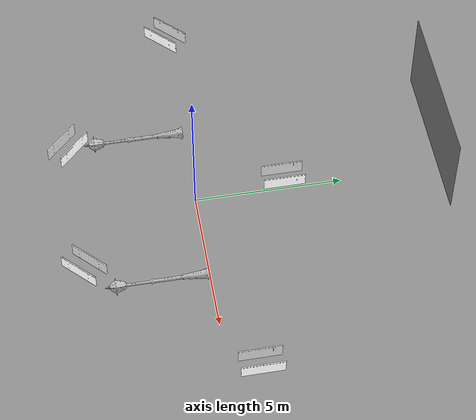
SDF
<sdf version="1.10">
 <world name="default">
  <physics type="ode">
   <max_step_size>0.0040000000000000001</max_step_size>
   <real_time_factor>1</real_time_factor>
   <real_time_update_rate>250</real_time_update_rate>
  </physics>
  <plugin name="gz::sim::systems::Physics" filename="gz-sim-physics-system"/>
  <plugin name="gz::sim::systems::UserCommands" filename="gz-sim-user-commands-system"/>
  <plugin name="gz::sim::systems::SceneBroadcaster" filename="gz-sim-scene-broadcaster-system"/>
  <plugin name="gz::sim::systems::Contact" filename="gz-sim-contact-system"/>
  <plugin name="gz::sim::systems::Imu" filename="gz-sim-imu-system"/>
  <plugin name="gz::sim::systems::Magnetometer" filename="gz-sim-magnetometer-system"/>
  <plugin name="gz::sim::systems::Altimeter" filename="gz-sim-altimeter-system"/>
  <plugin name="gz::sim::systems::NavSat" filename="gz-sim-navsat-system"/>
  <plugin name="gz::sim::systems::Sensors" filename="gz-sim-sensors-system">
   <render_engine>ogre2</render_engine>
  </plugin>
  <gravity>0 0 -9.8000000000000007</gravity>
  <magnetic_field>6.0000000000000002e-06 2.3e-05 -4.1999999999999998e-05</magnetic_field>
  <atmosphere type="adiabatic"/>
  <spherical_coordinates>
   <surface_model>EARTH_WGS84</surface_model>
   <latitude_deg>39.79480109851339</latitude_deg>
   <longitude_deg>-84.08631702793322</longitude_deg>
   <elevation>265.2</elevation>
   <heading_deg>0</heading_deg>
  </spherical_coordinates>
  <scene><grid>false</grid></scene>
  <model name="fire_1">
   <static>true</static>
   <link name="main">
    <collision name="collision">
     <pose>3 0 0 1.57079632679 0 0</pose>
     <geometry><mesh><scale>1 1 1</scale><uri>street.glb</uri></mesh></geometry>
    </collision>
    <visual name="objects">
     <pose>3 0 0 1.57079632679 0 0</pose>
     <geometry><mesh><scale>1 1 1</scale><uri>street.glb</uri></mesh></geometry>
    </visual>
   </link>
  </model>
  <model name="fire_2">
   <static>true</static>
   <link name="main">
    <collision name="collision">
     <pose>-3 0 0 1.57079632679 0 0</pose>
     <geometry><mesh><scale>1 1 1</scale><uri>street.glb</uri></mesh></geometry>
    </collision>
    <visual name="objects">
     <pose>-3 0 0 1.57079632679 0 0</pose>
     <geometry><mesh><scale>1 1 1</scale><uri>street.glb</uri></mesh></geometry>
    </visual>
   </link>
  </model>
  <model name="curtain_1">
   <static>true</static>
   <link name="main">
    <visual name="objects">
     <pose>-2.5 -4 0 0 0 0.78539816339</pose>
     <geometry><mesh><uri>curtain.dae</uri></mesh></geometry>
    </visual>
   </link>
  </model>
  <model name="curtain_2">
   <static>true</static>
   <link name="main">
    <visual name="objects">
     <pose>2.5 -4 0 0 0 -0.78539816339</pose>
     <geometry><mesh><uri>curtain.dae</uri></mesh></geometry>
    </visual>
   </link>
  </model>
  <model name="curtain_3">
   <static>true</static>
   <link name="main">
    <visual name="objects">
     <pose>0 3.0 0 0 0 0</pose>
     <geometry><mesh><uri>curtain.dae</uri></mesh></geometry>
    </visual>
   </link>
  </model>
  <model name="curtain_4">
   <static>true</static>
   <link name="main">
    <visual name="objects">
     <pose>-7 0 0 0 0 -0.78539816339</pose>
     <geometry><mesh><uri>curtain.dae</uri></mesh></geometry>
    </visual>
   </link>
  </model>
  <model name="curtain_5">
   <static>true</static>
   <link name="main">
    <visual name="objects">
     <pose>7 1 0 0 0 0</pose>
     <geometry><mesh><uri>curtain.dae</uri></mesh></geometry>
    </visual>
   </link>
  </model>
  <model name="nxp">
   <static>true</static>
   <link name="main">
    <visual name="objects">
     <pose>0 8.0 3 0 0 -1.57079632679</pose>
     <geometry><mesh><scale>5 5 5</scale><uri>nxp.dae</uri></mesh></geometry>
    </visual>
   </link>
   <joint name="world_joint" type="fixed"><parent>world</parent><child>main</child></joint>
  </model>
 </world>
</sdf>
